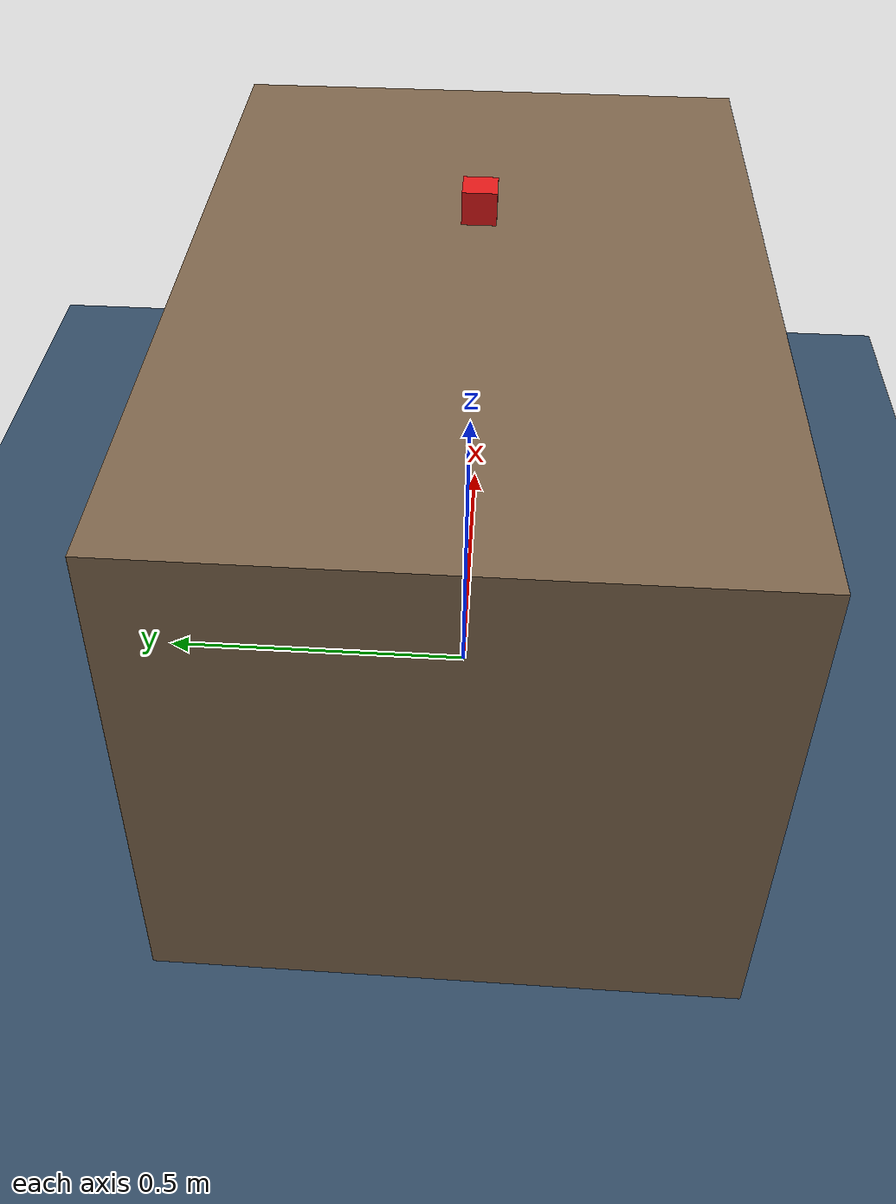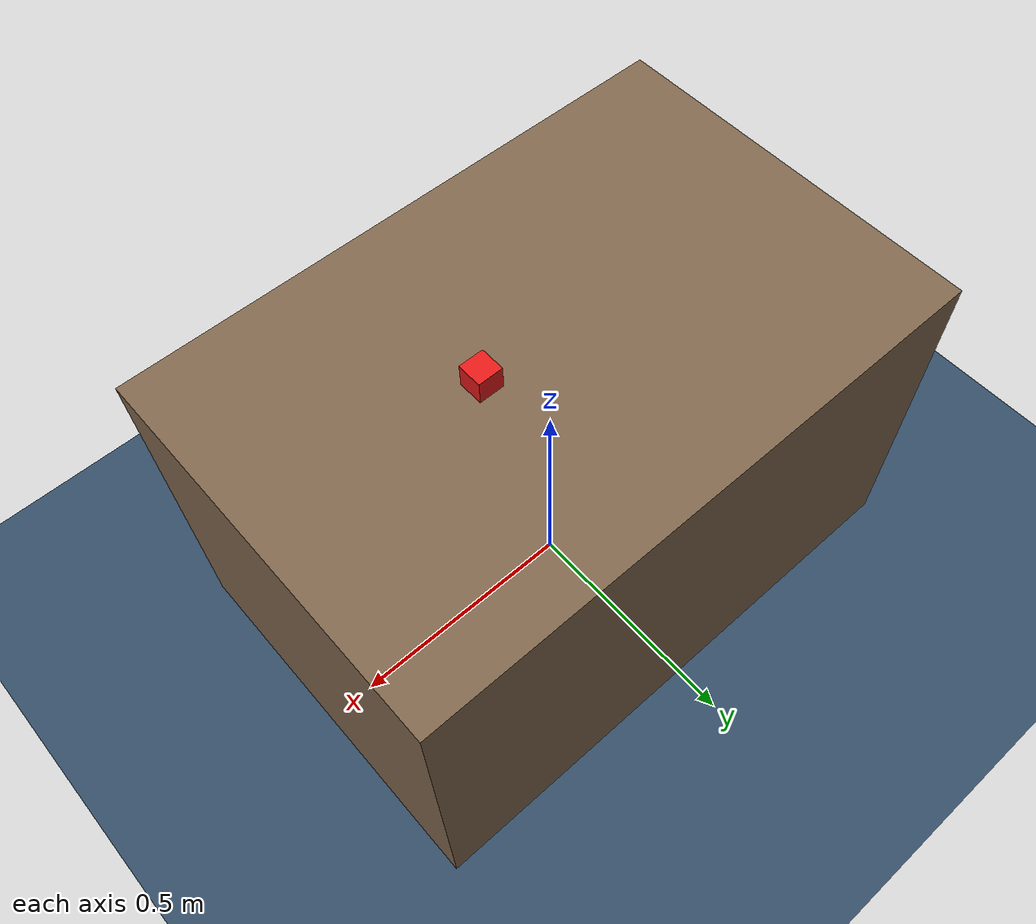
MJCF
<mujoco model="piper_tabletop">
  <visual>
    <headlight diffuse="0.8 0.8 0.8" ambient="0.3 0.3 0.3"/>
  </visual>
  <asset>
    <texture name="sky" type="skybox" builtin="gradient" rgb1="0.3 0.5 0.7" rgb2="0 0 0" width="512" height="3072"/>
  </asset>
  <worldbody>
    <light pos="0 0 2" dir="0 0 -1" directional="true"/>
    <geom name="floor" type="plane" size="0 0 0.05" rgba="0.2 0.3 0.4 1"/>
    <!-- A fixed table with its top at z=0.75 m; MJCF sizes are half sizes. -->
    <geom name="table" type="box" pos="0 0 0.375" size="0.6 0.4 0.375" rgba="0.5 0.4 0.3 1"/>
    <!-- Required: Piper base pose in world coordinates, metres and wxyz. -->
    <body name="piper_mount" pos="-0.3 0 0.75" quat="1 0 0 0"/>
    <body name="red_cube" pos="0.15 0 0.78">
      <freejoint/>
      <geom type="box" size="0.025 0.025 0.025" mass="0.05" rgba="0.9 0.1 0.1 1"/>
    </body>
  </worldbody>
</mujoco>
